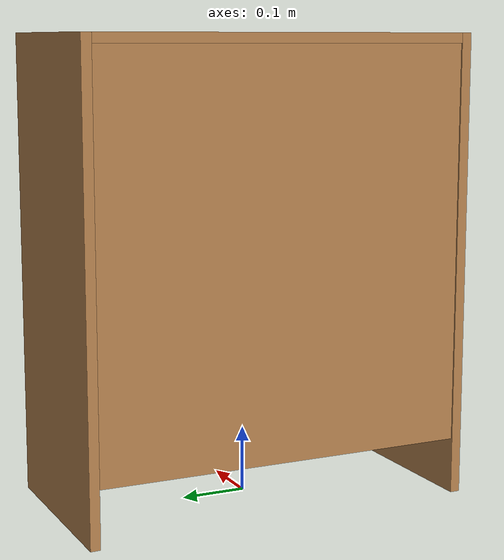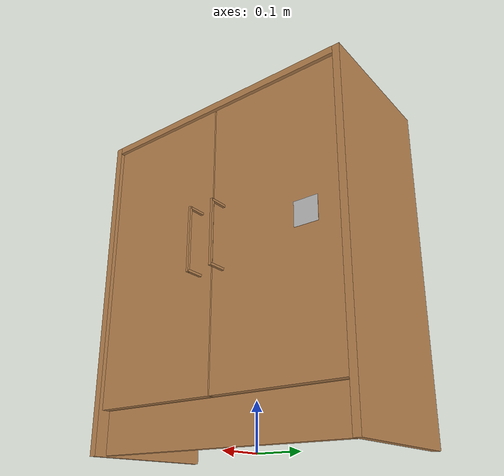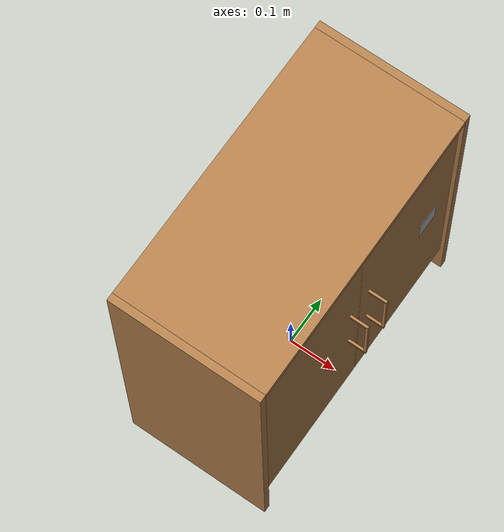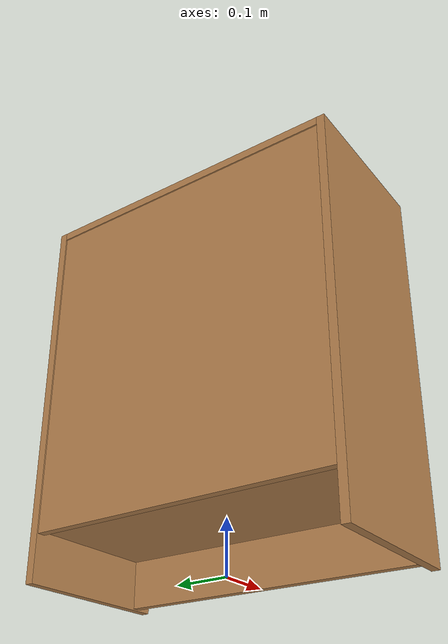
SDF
<?xml version="1.0" ?>
<sdf version="1.5">
  <model name="cabinet_door_fragile">
    <plugin name="BreakableJoint" filename="libbreakable_joint.so">
      <joint_name>right_handle_joint</joint_name>
      <pos_min>-0.05</pos_min>
      <pos_max>0.05</pos_max>
    </plugin>
    <plugin name="BreakableJoint" filename="libbreakable_joint.so">
      <joint_name>right_handle_joint2</joint_name>
      <pos_min>-0.05</pos_min>
      <pos_max>0.05</pos_max>
    </plugin>
    <plugin name="BreakableJoint" filename="libbreakable_joint.so">
      <joint_name>left_handle_joint</joint_name>
      <pos_min>-0.05</pos_min>
      <pos_max>0.05</pos_max>
    </plugin>
    <plugin name="BreakableJoint" filename="libbreakable_joint.so">
      <joint_name>left_handle_joint2</joint_name>
      <pos_min>-0.05</pos_min>
      <pos_max>0.05</pos_max>
    </plugin>

    <link name="cabinet">
      <pose>0 0 0.35 0 0 0</pose>
      <inertial>
        <mass>16.0</mass>
        <pose>0 0 0 0 0 0</pose>
        <inertia>
          <ixx>1.59</ixx>
          <ixy>0</ixy>
          <ixz>0</ixz>
          <iyy>1.12</iyy>
          <iyz>0</iyz>
          <izz>0.91</izz>
        </inertia>
      </inertial>
      <collision name="back">
        <pose>-0.14 0 0.035 0 0 0</pose>
        <geometry>
          <box>
            <size>0.015 0.585 0.6</size>
          </box>
        </geometry>
      </collision>
      <visual name="visual1">
        <pose>-0.14 0 0.035 0 0 0</pose>
        <geometry>
          <box>
            <size>0.015 0.585 0.6</size>
          </box>
        </geometry>
        <material>
          <script>
            <uri>file://media/materials/scripts/gazebo.material</uri>
            <name>Gazebo/Wood</name>
          </script>
        </material>
      </visual>
      <collision name="left_side">
        <pose>0 -0.2925 0 0 0 0</pose>
        <geometry>
          <box>
            <size>0.3 0.015 0.7</size>
          </box>
        </geometry>
      </collision>
      <visual name="visual2">
        <pose>0 -0.2925 0 0 0 0</pose>
        <geometry>
          <box>
            <size>0.3 0.015 0.7</size>
          </box>
        </geometry>
        <material>
          <script>
            <uri>file://media/materials/scripts/gazebo.material</uri>
            <name>Gazebo/Wood</name>
          </script>
        </material>
      </visual>
      <collision name="right_side">
        <pose>0 0.2925 0 0 0 0</pose>
        <geometry>
          <box>
            <size>0.3 0.015 0.7</size>
          </box>
        </geometry>
      </collision>
      <visual name="visual3">
        <pose>0 0.2925 0 0 0 0</pose>
        <geometry>
          <box>
            <size>0.3 0.015 0.7</size>
          </box>
        </geometry>
        <material>
          <script>
            <uri>file://media/materials/scripts/gazebo.material</uri>
            <name>Gazebo/Wood</name>
          </script>
        </material>
      </visual>
      <collision name="bottom">
        <pose>-0.002 0 -0.2525 0 0 0</pose>
        <geometry>
          <box>
            <size>0.26 0.57 0.015</size>
          </box>
        </geometry>
      </collision>
      <visual name="visual4">
        <pose>-0.002 0 -0.2525 0 0 0</pose>
        <geometry>
          <box>
            <size>0.26 0.57 0.015</size>
          </box>
        </geometry>
        <material>
          <script>
            <uri>file://media/materials/scripts/gazebo.material</uri>
            <name>Gazebo/Wood</name>
          </script>
        </material>
      </visual>
      <collision name="top">
        <pose>0 0 0.3425 0 0 0</pose>
        <geometry>
          <box>
            <size>0.3 0.57 0.015</size>
          </box>
        </geometry>
      </collision>
      <visual name="visual5">
        <pose>0 0 0.3425 0 0 0</pose>
        <geometry>
          <box>
            <size>0.3 0.57 0.015</size>
          </box>
        </geometry>
        <material>
          <script>
            <uri>file://media/materials/scripts/gazebo.material</uri>
            <name>Gazebo/Wood</name>
          </script>
        </material>
      </visual>
      <collision name="middle_shelf">
        <pose>-0.002 0 0.0475 0 0 0</pose>
        <geometry>
          <box>
            <size>0.26 0.57 0.015</size>
          </box>
        </geometry>
      </collision>
      <visual name="visual6">
        <pose>-0.002 0 0.0475 0 0 0</pose>
        <geometry>
          <box>
            <size>0.26 0.57 0.015</size>
          </box>
        </geometry>
        <material>
          <script>
            <uri>file://media/materials/scripts/gazebo.material</uri>
            <name>Gazebo/Wood</name>
          </script>
        </material>
      </visual>
      <collision name="low_front">
        <pose>0.115 0 -0.3025 0 0 0</pose>
        <geometry>
          <box>
            <size>0.015 0.57 0.09</size>
          </box>
        </geometry>
      </collision>
      <visual name="visual7">
        <pose>0.115 0 -0.3025 0 0 0</pose>
        <geometry>
          <box>
            <size>0.015 0.57 0.09</size>
          </box>
        </geometry>
        <material>
          <script>
            <uri>file://media/materials/scripts/gazebo.material</uri>
            <name>Gazebo/Wood</name>
          </script>
        </material>
      </visual>
    </link>
    <link name="right_door">
      <pose>0.135 0.2835 0.3875 0 0 0</pose>
      <inertial>
        <mass>1.7</mass>
        <pose>0 -0.141 0 0 0 0</pose>
        <inertia>
          <ixx>0.06</ixx>
          <ixy>0</ixy>
          <ixz>0</ixz>
          <iyy>0.49</iyy>
          <iyz>0</iyz>
          <izz>0.111</izz>
        </inertia>
      </inertial>
      <collision name="right_face">
        <pose>0 -0.141 0 0 0 0</pose>
        <geometry>
          <box>
            <size>0.015 0.282 0.595</size>
          </box>
        </geometry>
      </collision>
      <visual name="right_face_vis">
        <pose>0 -0.141 0 0 0 0</pose>
        <geometry>
          <box>
            <size>0.015 0.282 0.595</size>
          </box>
        </geometry>
        <material>
          <script>
            <uri>file://media/materials/scripts/gazebo.material</uri>
            <name>Gazebo/Wood</name>
          </script>
        </material>
      </visual>
      <collision name="right_handle_up">
        <pose>0.02475 -0.2555 0.0656 0 0 0</pose>
        <geometry>
          <box>
            <size>0.04 0.005 0.005</size>
          </box>
        </geometry>
      </collision>
      <visual name="right_handle_up_vis">
        <pose>0.02475 -0.2555 0.0656 0 0 0</pose>
        <geometry>
          <box>
            <size>0.04 0.005 0.005</size>
          </box>
        </geometry>
        <material>
          <script>
            <uri>file://media/materials/scripts/gazebo.material</uri>
            <name>Gazebo/Wood</name>
          </script>
        </material>
      </visual>
      <collision name="right_handle_bo">
        <pose>0.02475 -0.2555 -0.06542 0 0 0</pose>
        <geometry>
          <box>
            <size>0.04 0.005 0.005</size>
          </box>
        </geometry>
      </collision>
      <visual name="right_handle_bo_vis">
        <pose>0.02475 -0.2555 -0.06542 0 0 0</pose>
        <geometry>
          <box>
            <size>0.04 0.005 0.005</size>
          </box>
        </geometry>
        <material>
          <script>
            <uri>file://media/materials/scripts/gazebo.material</uri>
            <name>Gazebo/Wood</name>
          </script>
        </material>
      </visual>
      <visual name="visual_marker_0">
        <pose>0.007 -0.07 0 1.57075 0 1.57075</pose>
        <geometry>
          <mesh>
            <uri>model://ar_marker_5cm_0/meshes/ar_marker_5cm.dae</uri>
          </mesh>
        </geometry>
      </visual>
    </link>
    <joint name="right_handle_joint" type="revolute">
      <parent>right_door</parent>
      <child>right_handle_dummy</child>
      <axis>
        <xyz>0 1 0</xyz>
        <limit>
          <lower>-3.1</lower>
          <upper>3.1</upper>
        </limit>
        <dynamics>
          <damping>0.01</damping>
          <friction>1</friction>
        </dynamics>
        <use_parent_model_frame>true</use_parent_model_frame>
      </axis>
      <pose>0 0 0 0 0 0</pose>
    </joint>
    <link name="right_handle_dummy">
      <pose>0.17804 0.028 0.3195 0 0 0</pose>
      <inertial>
        <mass>0.1</mass>
        <pose>0 0 0.068 0 0 0</pose>
        <inertia>
          <ixx>0.000154133</ixx>
          <ixy>0</ixy>
          <ixz>0</ixz>
          <iyy>0.000154133</iyy>
          <iyz>0</iyz>
          <izz>0.000154133</izz>
        </inertia>
      </inertial>
    </link>
    <joint name="right_handle_joint2" type="revolute">
      <parent>right_handle_dummy</parent>
      <child>right_handle</child>
      <axis>
        <xyz>1 0 0</xyz>
        <limit>
          <lower>-3.1</lower>
          <upper>3.1</upper>
        </limit>
        <dynamics>
          <damping>0.01</damping>
          <friction>1</friction>
        </dynamics>
        <use_parent_model_frame>true</use_parent_model_frame>
      </axis>
      <pose>0 0 0 0 0 0</pose>
    </joint>
    <link name="right_handle">
      <pose>0.17804 0.028 0.3195 0 0 0</pose>
      <inertial>
        <mass>0.1</mass>
        <pose>0 0 0.068 0 0 0</pose>
        <inertia>
          <ixx>0.000154133</ixx>
          <ixy>0</ixy>
          <ixz>0</ixz>
          <iyy>0.000154133</iyy>
          <iyz>0</iyz>
          <izz>0.000154133</izz>
        </inertia>
      </inertial>
      <collision name="right_handle">
        <pose>0 0 0.068 0 0 0</pose>
        <geometry>
          <box>
            <size>0.005 0.005 0.136</size>
          </box>
        </geometry>
      </collision>
      <visual name="right_handle_vis">
        <pose>0 0 0.068 0 0 0</pose>
        <geometry>
          <box>
            <size>0.005 0.005 0.136</size>
          </box>
        </geometry>
        <material>
          <script>
            <uri>file://media/materials/scripts/gazebo.material</uri>
            <name>Gazebo/Wood</name>
          </script>
        </material>
      </visual>
    </link>
    <joint name="right_joint" type="revolute">
      <parent>cabinet</parent>
      <child>right_door</child>
      <axis>
        <xyz>0 0 1</xyz>
        <limit>
          <lower>-0.001</lower>
          <upper>2.36</upper>
        </limit>
        <dynamics>
          <damping>0.5</damping>
          <friction>0.1</friction>
        </dynamics>
        <use_parent_model_frame>true</use_parent_model_frame>
      </axis>
      <pose>0 0 0 0 0 0</pose>
    </joint>
    <link name="left_door">
      <pose>0.135 -0.2835 0.3875 0 0 0</pose>
      <inertial>
        <mass>1.0</mass>
        <pose>0 0.141 0 0 0 0</pose>
        <inertia>
          <ixx>0.06</ixx>
          <ixy>0</ixy>
          <ixz>0</ixz>
          <iyy>0.49</iyy>
          <iyz>0</iyz>
          <izz>0.111</izz>
        </inertia>
      </inertial>
      <collision name="left_face">
        <pose>0 0.141 0 0 0 0</pose>
        <geometry>
          <box>
            <size>0.015 0.282 0.595</size>
          </box>
        </geometry>
      </collision>
      <visual name="left_face_vis">
        <pose>0 0.141 0 0 0 0</pose>
        <geometry>
          <box>
            <size>0.015 0.282 0.595</size>
          </box>
        </geometry>
        <material>
          <script>
            <uri>file://media/materials/scripts/gazebo.material</uri>
            <name>Gazebo/Wood</name>
          </script>
        </material>
      </visual>
      <collision name="left_handle_up">
        <pose>0.02475 0.2555 0.0656 0 0 0</pose>
        <geometry>
          <box>
            <size>0.04 0.005 0.005</size>
          </box>
        </geometry>
      </collision>
      <visual name="left_handle_up_vis">
        <pose>0.02475 0.2555 0.0656 0 0 0</pose>
        <geometry>
          <box>
            <size>0.04 0.005 0.005</size>
          </box>
        </geometry>
        <material>
          <script>
            <uri>file://media/materials/scripts/gazebo.material</uri>
            <name>Gazebo/Wood</name>
          </script>
        </material>
      </visual>
      <collision name="left_handle_bo">
        <pose>0.02475 0.2555 -0.06542 0 0 0</pose>
        <geometry>
          <box>
            <size>0.04 0.005 0.005</size>
          </box>
        </geometry>
      </collision>
      <visual name="left_handle_bo_vis">
        <pose>0.02475 0.2555 -0.06542 0 0 0</pose>
        <geometry>
          <box>
            <size>0.04 0.005 0.005</size>
          </box>
        </geometry>
        <material>
          <script>
            <uri>file://media/materials/scripts/gazebo.material</uri>
            <name>Gazebo/Wood</name>
          </script>
        </material>
      </visual>
    </link>
    <joint name="left_joint" type="revolute">
      <parent>cabinet</parent>
      <child>left_door</child>
      <axis>
        <xyz>0 0 1</xyz>
        <limit>
          <lower>-2.36</lower>
          <upper>0.001</upper>
        </limit>
        <dynamics>
          <damping>0.5</damping>
          <friction>0.1</friction>
        </dynamics>
        <use_parent_model_frame>true</use_parent_model_frame>
      </axis>
      <pose>0 0 0 0 0 0</pose>
    </joint>
    <joint name="left_handle_joint" type="revolute">
      <parent>left_door</parent>
      <child>left_handle_dummy</child>
      <axis>
        <xyz>0 1 0</xyz>
        <limit>
          <lower>-3.1</lower>
          <upper>3.1</upper>
        </limit>
        <dynamics>
          <damping>0.01</damping>
          <friction>1</friction>
        </dynamics>
        <use_parent_model_frame>true</use_parent_model_frame>
      </axis>
      <pose>0 0 0 0 0 0</pose>
    </joint>
    <link name="left_handle_dummy">
      <pose>0.17804 -0.028 0.3195 0 0 0</pose>
      <inertial>
        <mass>0.1</mass>
        <pose>0 0 0.068 0 0 0</pose>
        <inertia>
          <ixx>0.000154133</ixx>
          <ixy>0</ixy>
          <ixz>0</ixz>
          <iyy>0.000154133</iyy>
          <iyz>0</iyz>
          <izz>0.000154133</izz>
        </inertia>
      </inertial>
    </link>
    <joint name="left_handle_joint2" type="revolute">
      <parent>left_handle_dummy</parent>
      <child>left_handle</child>
      <axis>
        <xyz>1 0 0</xyz>
        <limit>
          <lower>-3.1</lower>
          <upper>3.1</upper>
        </limit>
        <dynamics>
          <damping>0.01</damping>
          <friction>1</friction>
        </dynamics>
        <use_parent_model_frame>true</use_parent_model_frame>
      </axis>
      <pose>0 0 0 0 0 0</pose>
    </joint>
    <link name="left_handle">
      <pose>0.17804 -0.028 0.3195 0 0 0</pose>
      <inertial>
        <mass>0.1</mass>
        <pose>0 0 0.068 0 0 0</pose>
        <inertia>
          <ixx>0.000154133</ixx>
          <ixy>0</ixy>
          <ixz>0</ixz>
          <iyy>0.000154133</iyy>
          <iyz>0</iyz>
          <izz>0.000154133</izz>
        </inertia>
      </inertial>
      <collision name="left_handle">
        <pose>0 0 0.068 0 0 0</pose>
        <geometry>
          <box>
            <size>0.005 0.005 0.136</size>
          </box>
        </geometry>
      </collision>
      <visual name="left_handle_vis">
        <pose>0 0 0.068 0 0 0</pose>
        <geometry>
          <box>
            <size>0.005 0.005 0.136</size>
          </box>
        </geometry>
        <material>
          <script>
            <uri>file://media/materials/scripts/gazebo.material</uri>
            <name>Gazebo/Wood</name>
          </script>
        </material>
      </visual>
    </link>
  </model>
</sdf>
